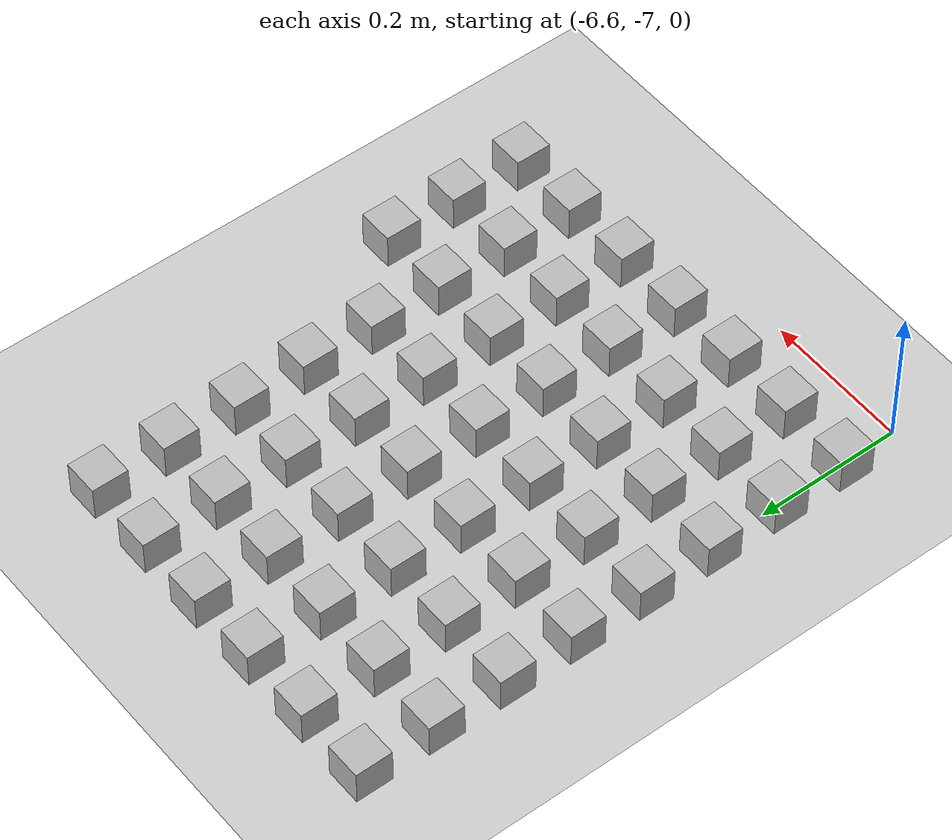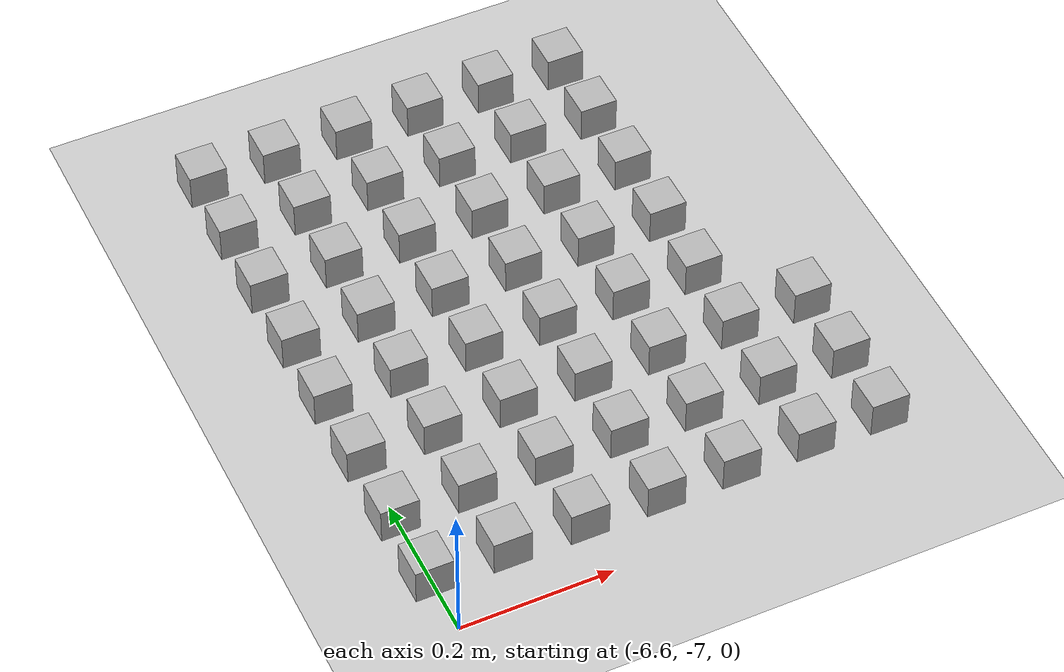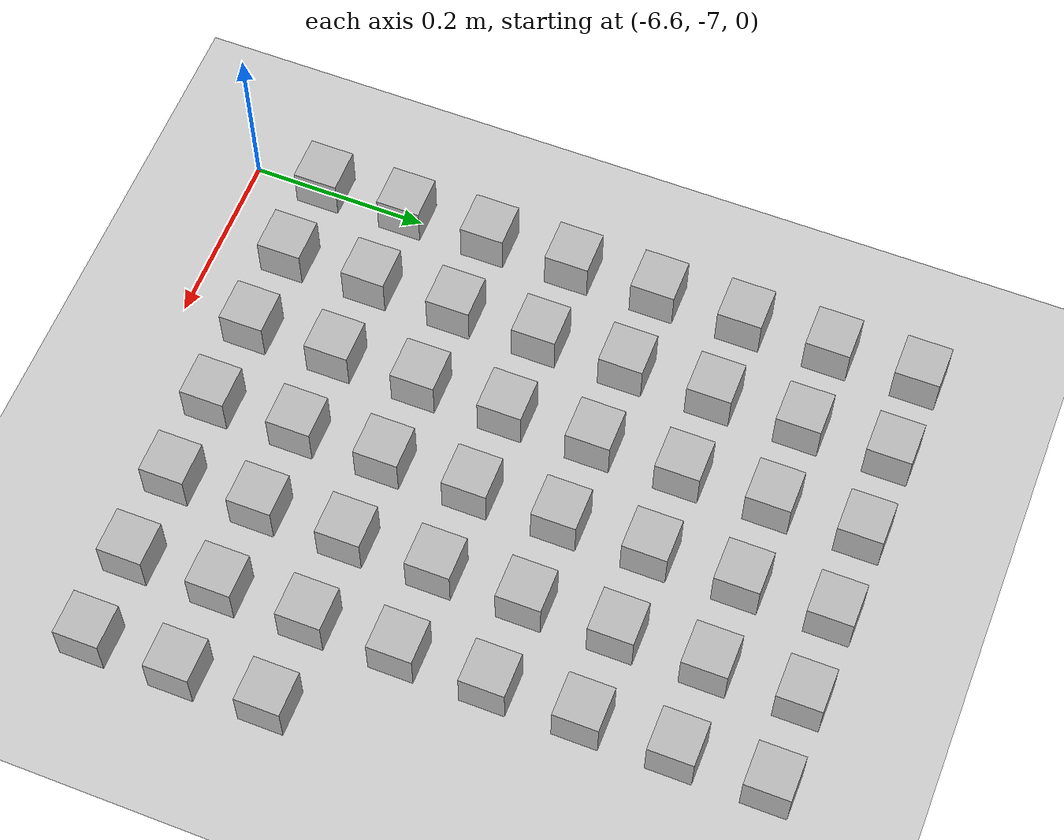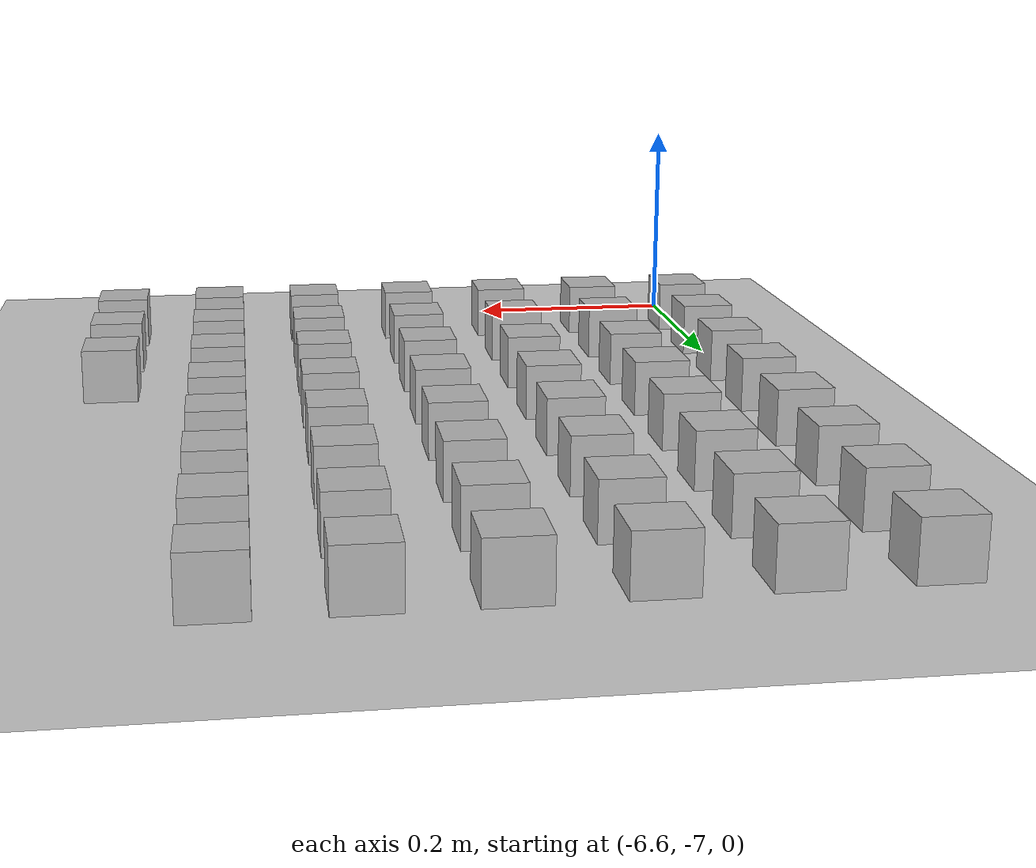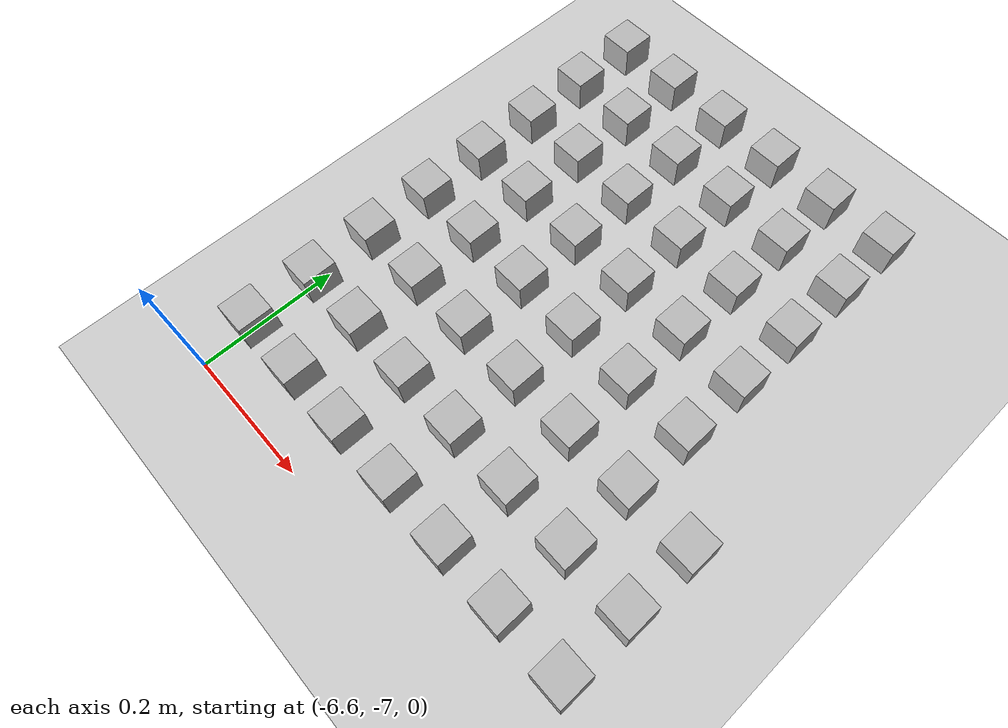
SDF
<sdf version="1.4">
 <world name="default">
  <model name="ground_plane">
   <static>1</static>
   <link name="link">
    <collision name="collision">
     <geometry><plane><normal>0 0 1</normal><size>100 100</size></plane></geometry>
     <surface><friction><ode><mu>100</mu><mu2>50</mu2></ode></friction></surface>
    </collision>
    <visual name="visual">
     <cast_shadows>0</cast_shadows>
     <geometry><plane><normal>0 0 1</normal><size>100 100</size></plane></geometry>
     <material>
      <script><uri>file://media/materials/scripts/gazebo.material</uri><name>Gazebo/Grey</name></script>
     </material>
    </visual>
    <velocity_decay><linear>0</linear><angular>0</angular></velocity_decay>
   </link>
  </model>
  <model name="at64">
   <static>0</static>
   <link name="link">
    <inertial>
     <mass>0.01</mass>
     <inertia><ixx>4e-05</ixx><ixy>0</ixy><ixz>0</ixz><iyy>4e-05</iyy><iyz>0</iyz><izz>4e-05</izz></inertia>
    </inertial>
    <visual name="visual">
     <geometry><box><size>0.05 0.05 0.05</size></box></geometry>
     <material>
      <script>
       <uri>model://at0/materials/scripts</uri>
       <uri>model://at0/materials/textures</uri>
       <name>at0/Diffuse</name>
      </script>
     </material>
    </visual>
    <collision name="collision">
     <geometry><box><size>0.05 0.05 0.05</size></box></geometry>
     <surface><friction><ode><mu>0.8</mu><mu2>0.7</mu2></ode></friction></surface>
    </collision>
    <velocity_decay><linear>0</linear><angular>0</angular></velocity_decay>
   </link>
   <pose>-6.60353 -6.91802 0.025 0 -0 0</pose>
  </model>
  <model name="at65">
   <static>0</static>
   <link name="link">
    <inertial>
     <mass>0.01</mass>
     <inertia><ixx>4e-05</ixx><ixy>0</ixy><ixz>0</ixz><iyy>4e-05</iyy><iyz>0</iyz><izz>4e-05</izz></inertia>
    </inertial>
    <visual name="visual">
     <geometry><box><size>0.05 0.05 0.05</size></box></geometry>
     <material>
      <script>
       <uri>model://at0/materials/scripts</uri>
       <uri>model://at0/materials/textures</uri>
       <name>at0/Diffuse</name>
      </script>
     </material>
    </visual>
    <collision name="collision">
     <geometry><box><size>0.05 0.05 0.05</size></box></geometry>
     <surface><friction><ode><mu>0.8</mu><mu2>0.7</mu2></ode></friction></surface>
    </collision>
    <velocity_decay><linear>0</linear><angular>0</angular></velocity_decay>
   </link>
   <pose>-6.50353 -6.91802 0.025 0 -0 0</pose>
  </model>
  <model name="at66">
   <static>0</static>
   <link name="link">
    <inertial>
     <mass>0.01</mass>
     <inertia><ixx>4e-05</ixx><ixy>0</ixy><ixz>0</ixz><iyy>4e-05</iyy><iyz>0</iyz><izz>4e-05</izz></inertia>
    </inertial>
    <visual name="visual">
     <geometry><box><size>0.05 0.05 0.05</size></box></geometry>
     <material>
      <script>
       <uri>model://at0/materials/scripts</uri>
       <uri>model://at0/materials/textures</uri>
       <name>at0/Diffuse</name>
      </script>
     </material>
    </visual>
    <collision name="collision">
     <geometry><box><size>0.05 0.05 0.05</size></box></geometry>
     <surface><friction><ode><mu>0.8</mu><mu2>0.7</mu2></ode></friction></surface>
    </collision>
    <velocity_decay><linear>0</linear><angular>0</angular></velocity_decay>
   </link>
   <pose>-6.40353 -6.91802 0.025 0 -0 0</pose>
  </model>
  <model name="at67">
   <static>0</static>
   <link name="link">
    <inertial>
     <mass>0.01</mass>
     <inertia><ixx>4e-05</ixx><ixy>0</ixy><ixz>0</ixz><iyy>4e-05</iyy><iyz>0</iyz><izz>4e-05</izz></inertia>
    </inertial>
    <visual name="visual">
     <geometry><box><size>0.05 0.05 0.05</size></box></geometry>
     <material>
      <script>
       <uri>model://at0/materials/scripts</uri>
       <uri>model://at0/materials/textures</uri>
       <name>at0/Diffuse</name>
      </script>
     </material>
    </visual>
    <collision name="collision">
     <geometry><box><size>0.05 0.05 0.05</size></box></geometry>
     <surface><friction><ode><mu>0.8</mu><mu2>0.7</mu2></ode></friction></surface>
    </collision>
    <velocity_decay><linear>0</linear><angular>0</angular></velocity_decay>
   </link>
   <pose>-6.30353 -6.91802 0.025 0 -0 0</pose>
  </model>
  <model name="at68">
   <static>0</static>
   <link name="link">
    <inertial>
     <mass>0.01</mass>
     <inertia><ixx>4e-05</ixx><ixy>0</ixy><ixz>0</ixz><iyy>4e-05</iyy><iyz>0</iyz><izz>4e-05</izz></inertia>
    </inertial>
    <visual name="visual">
     <geometry><box><size>0.05 0.05 0.05</size></box></geometry>
     <material>
      <script>
       <uri>model://at0/materials/scripts</uri>
       <uri>model://at0/materials/textures</uri>
       <name>at0/Diffuse</name>
      </script>
     </material>
    </visual>
    <collision name="collision">
     <geometry><box><size>0.05 0.05 0.05</size></box></geometry>
     <surface><friction><ode><mu>0.8</mu><mu2>0.7</mu2></ode></friction></surface>
    </collision>
    <velocity_decay><linear>0</linear><angular>0</angular></velocity_decay>
   </link>
   <pose>-6.20353 -6.91802 0.025 0 -0 0</pose>
  </model>
  <model name="at69">
   <static>0</static>
   <link name="link">
    <inertial>
     <mass>0.01</mass>
     <inertia><ixx>4e-05</ixx><ixy>0</ixy><ixz>0</ixz><iyy>4e-05</iyy><iyz>0</iyz><izz>4e-05</izz></inertia>
    </inertial>
    <visual name="visual">
     <geometry><box><size>0.05 0.05 0.05</size></box></geometry>
     <material>
      <script>
       <uri>model://at0/materials/scripts</uri>
       <uri>model://at0/materials/textures</uri>
       <name>at0/Diffuse</name>
      </script>
     </material>
    </visual>
    <collision name="collision">
     <geometry><box><size>0.05 0.05 0.05</size></box></geometry>
     <surface><friction><ode><mu>0.8</mu><mu2>0.7</mu2></ode></friction></surface>
    </collision>
    <velocity_decay><linear>0</linear><angular>0</angular></velocity_decay>
   </link>
   <pose>-6.10353 -6.91802 0.025 0 -0 0</pose>
  </model>
  <model name="at70">
   <static>0</static>
   <link name="link">
    <inertial>
     <mass>0.01</mass>
     <inertia><ixx>4e-05</ixx><ixy>0</ixy><ixz>0</ixz><iyy>4e-05</iyy><iyz>0</iyz><izz>4e-05</izz></inertia>
    </inertial>
    <visual name="visual">
     <geometry><box><size>0.05 0.05 0.05</size></box></geometry>
     <material>
      <script>
       <uri>model://at0/materials/scripts</uri>
       <uri>model://at0/materials/textures</uri>
       <name>at0/Diffuse</name>
      </script>
     </material>
    </visual>
    <collision name="collision">
     <geometry><box><size>0.05 0.05 0.05</size></box></geometry>
     <surface><friction><ode><mu>0.8</mu><mu2>0.7</mu2></ode></friction></surface>
    </collision>
    <velocity_decay><linear>0</linear><angular>0</angular></velocity_decay>
   </link>
   <pose>-6.00353 -6.91802 0.025 0 -0 0</pose>
  </model>
  <model name="at72">
   <static>0</static>
   <link name="link">
    <inertial>
     <mass>0.01</mass>
     <inertia><ixx>4e-05</ixx><ixy>0</ixy><ixz>0</ixz><iyy>4e-05</iyy><iyz>0</iyz><izz>4e-05</izz></inertia>
    </inertial>
    <visual name="visual">
     <geometry><box><size>0.05 0.05 0.05</size></box></geometry>
     <material>
      <script>
       <uri>model://at0/materials/scripts</uri>
       <uri>model://at0/materials/textures</uri>
       <name>at0/Diffuse</name>
      </script>
     </material>
    </visual>
    <collision name="collision">
     <geometry><box><size>0.05 0.05 0.05</size></box></geometry>
     <surface><friction><ode><mu>0.8</mu><mu2>0.7</mu2></ode></friction></surface>
    </collision>
    <velocity_decay><linear>0</linear><angular>0</angular></velocity_decay>
   </link>
   <pose>-6.60353 -6.81802 0.025 0 -0 0</pose>
  </model>
  <model name="at73">
   <static>0</static>
   <link name="link">
    <inertial>
     <mass>0.01</mass>
     <inertia><ixx>4e-05</ixx><ixy>0</ixy><ixz>0</ixz><iyy>4e-05</iyy><iyz>0</iyz><izz>4e-05</izz></inertia>
    </inertial>
    <visual name="visual">
     <geometry><box><size>0.05 0.05 0.05</size></box></geometry>
     <material>
      <script>
       <uri>model://at0/materials/scripts</uri>
       <uri>model://at0/materials/textures</uri>
       <name>at0/Diffuse</name>
      </script>
     </material>
    </visual>
    <collision name="collision">
     <geometry><box><size>0.05 0.05 0.05</size></box></geometry>
     <surface><friction><ode><mu>0.8</mu><mu2>0.7</mu2></ode></friction></surface>
    </collision>
    <velocity_decay><linear>0</linear><angular>0</angular></velocity_decay>
   </link>
   <pose>-6.50353 -6.81802 0.025 0 -0 0</pose>
  </model>
  <model name="at74">
   <static>0</static>
   <link name="link">
    <inertial>
     <mass>0.01</mass>
     <inertia><ixx>4e-05</ixx><ixy>0</ixy><ixz>0</ixz><iyy>4e-05</iyy><iyz>0</iyz><izz>4e-05</izz></inertia>
    </inertial>
    <visual name="visual">
     <geometry><box><size>0.05 0.05 0.05</size></box></geometry>
     <material>
      <script>
       <uri>model://at0/materials/scripts</uri>
       <uri>model://at0/materials/textures</uri>
       <name>at0/Diffuse</name>
      </script>
     </material>
    </visual>
    <collision name="collision">
     <geometry><box><size>0.05 0.05 0.05</size></box></geometry>
     <surface><friction><ode><mu>0.8</mu><mu2>0.7</mu2></ode></friction></surface>
    </collision>
    <velocity_decay><linear>0</linear><angular>0</angular></velocity_decay>
   </link>
   <pose>-6.40353 -6.81802 0.025 0 -0 0</pose>
  </model>
  <model name="at75">
   <static>0</static>
   <link name="link">
    <inertial>
     <mass>0.01</mass>
     <inertia><ixx>4e-05</ixx><ixy>0</ixy><ixz>0</ixz><iyy>4e-05</iyy><iyz>0</iyz><izz>4e-05</izz></inertia>
    </inertial>
    <visual name="visual">
     <geometry><box><size>0.05 0.05 0.05</size></box></geometry>
     <material>
      <script>
       <uri>model://at0/materials/scripts</uri>
       <uri>model://at0/materials/textures</uri>
       <name>at0/Diffuse</name>
      </script>
     </material>
    </visual>
    <collision name="collision">
     <geometry><box><size>0.05 0.05 0.05</size></box></geometry>
     <surface><friction><ode><mu>0.8</mu><mu2>0.7</mu2></ode></friction></surface>
    </collision>
    <velocity_decay><linear>0</linear><angular>0</angular></velocity_decay>
   </link>
   <pose>-6.30353 -6.81802 0.025 0 -0 0</pose>
  </model>
  <model name="at76">
   <static>0</static>
   <link name="link">
    <inertial>
     <mass>0.01</mass>
     <inertia><ixx>4e-05</ixx><ixy>0</ixy><ixz>0</ixz><iyy>4e-05</iyy><iyz>0</iyz><izz>4e-05</izz></inertia>
    </inertial>
    <visual name="visual">
     <geometry><box><size>0.05 0.05 0.05</size></box></geometry>
     <material>
      <script>
       <uri>model://at0/materials/scripts</uri>
       <uri>model://at0/materials/textures</uri>
       <name>at0/Diffuse</name>
      </script>
     </material>
    </visual>
    <collision name="collision">
     <geometry><box><size>0.05 0.05 0.05</size></box></geometry>
     <surface><friction><ode><mu>0.8</mu><mu2>0.7</mu2></ode></friction></surface>
    </collision>
    <velocity_decay><linear>0</linear><angular>0</angular></velocity_decay>
   </link>
   <pose>-6.20353 -6.81802 0.025 0 -0 0</pose>
  </model>
  <model name="at77">
   <static>0</static>
   <link name="link">
    <inertial>
     <mass>0.01</mass>
     <inertia><ixx>4e-05</ixx><ixy>0</ixy><ixz>0</ixz><iyy>4e-05</iyy><iyz>0</iyz><izz>4e-05</izz></inertia>
    </inertial>
    <visual name="visual">
     <geometry><box><size>0.05 0.05 0.05</size></box></geometry>
     <material>
      <script>
       <uri>model://at0/materials/scripts</uri>
       <uri>model://at0/materials/textures</uri>
       <name>at0/Diffuse</name>
      </script>
     </material>
    </visual>
    <collision name="collision">
     <geometry><box><size>0.05 0.05 0.05</size></box></geometry>
     <surface><friction><ode><mu>0.8</mu><mu2>0.7</mu2></ode></friction></surface>
    </collision>
    <velocity_decay><linear>0</linear><angular>0</angular></velocity_decay>
   </link>
   <pose>-6.10353 -6.81802 0.025 0 -0 0</pose>
  </model>
  <model name="at78">
   <static>0</static>
   <link name="link">
    <inertial>
     <mass>0.01</mass>
     <inertia><ixx>4e-05</ixx><ixy>0</ixy><ixz>0</ixz><iyy>4e-05</iyy><iyz>0</iyz><izz>4e-05</izz></inertia>
    </inertial>
    <visual name="visual">
     <geometry><box><size>0.05 0.05 0.05</size></box></geometry>
     <material>
      <script>
       <uri>model://at0/materials/scripts</uri>
       <uri>model://at0/materials/textures</uri>
       <name>at0/Diffuse</name>
      </script>
     </material>
    </visual>
    <collision name="collision">
     <geometry><box><size>0.05 0.05 0.05</size></box></geometry>
     <surface><friction><ode><mu>0.8</mu><mu2>0.7</mu2></ode></friction></surface>
    </collision>
    <velocity_decay><linear>0</linear><angular>0</angular></velocity_decay>
   </link>
   <pose>-6.00353 -6.81802 0.025 0 -0 0</pose>
  </model>
  <model name="at80">
   <static>0</static>
   <link name="link">
    <inertial>
     <mass>0.01</mass>
     <inertia><ixx>4e-05</ixx><ixy>0</ixy><ixz>0</ixz><iyy>4e-05</iyy><iyz>0</iyz><izz>4e-05</izz></inertia>
    </inertial>
    <visual name="visual">
     <geometry><box><size>0.05 0.05 0.05</size></box></geometry>
     <material>
      <script>
       <uri>model://at0/materials/scripts</uri>
       <uri>model://at0/materials/textures</uri>
       <name>at0/Diffuse</name>
      </script>
     </material>
    </visual>
    <collision name="collision">
     <geometry><box><size>0.05 0.05 0.05</size></box></geometry>
     <surface><friction><ode><mu>0.8</mu><mu2>0.7</mu2></ode></friction></surface>
    </collision>
    <velocity_decay><linear>0</linear><angular>0</angular></velocity_decay>
   </link>
   <pose>-6.60353 -6.71802 0.025 0 -0 0</pose>
  </model>
  <model name="at81">
   <static>0</static>
   <link name="link">
    <inertial>
     <mass>0.01</mass>
     <inertia><ixx>4e-05</ixx><ixy>0</ixy><ixz>0</ixz><iyy>4e-05</iyy><iyz>0</iyz><izz>4e-05</izz></inertia>
    </inertial>
    <visual name="visual">
     <geometry><box><size>0.05 0.05 0.05</size></box></geometry>
     <material>
      <script>
       <uri>model://at0/materials/scripts</uri>
       <uri>model://at0/materials/textures</uri>
       <name>at0/Diffuse</name>
      </script>
     </material>
    </visual>
    <collision name="collision">
     <geometry><box><size>0.05 0.05 0.05</size></box></geometry>
     <surface><friction><ode><mu>0.8</mu><mu2>0.7</mu2></ode></friction></surface>
    </collision>
    <velocity_decay><linear>0</linear><angular>0</angular></velocity_decay>
   </link>
   <pose>-6.50353 -6.71802 0.025 0 -0 0</pose>
  </model>
  <model name="at82">
   <static>0</static>
   <link name="link">
    <inertial>
     <mass>0.01</mass>
     <inertia><ixx>4e-05</ixx><ixy>0</ixy><ixz>0</ixz><iyy>4e-05</iyy><iyz>0</iyz><izz>4e-05</izz></inertia>
    </inertial>
    <visual name="visual">
     <geometry><box><size>0.05 0.05 0.05</size></box></geometry>
     <material>
      <script>
       <uri>model://at0/materials/scripts</uri>
       <uri>model://at0/materials/textures</uri>
       <name>at0/Diffuse</name>
      </script>
     </material>
    </visual>
    <collision name="collision">
     <geometry><box><size>0.05 0.05 0.05</size></box></geometry>
     <surface><friction><ode><mu>0.8</mu><mu2>0.7</mu2></ode></friction></surface>
    </collision>
    <velocity_decay><linear>0</linear><angular>0</angular></velocity_decay>
   </link>
   <pose>-6.40353 -6.71802 0.025 0 -0 0</pose>
  </model>
  <model name="at83">
   <static>0</static>
   <link name="link">
    <inertial>
     <mass>0.01</mass>
     <inertia><ixx>4e-05</ixx><ixy>0</ixy><ixz>0</ixz><iyy>4e-05</iyy><iyz>0</iyz><izz>4e-05</izz></inertia>
    </inertial>
    <visual name="visual">
     <geometry><box><size>0.05 0.05 0.05</size></box></geometry>
     <material>
      <script>
       <uri>model://at0/materials/scripts</uri>
       <uri>model://at0/materials/textures</uri>
       <name>at0/Diffuse</name>
      </script>
     </material>
    </visual>
    <collision name="collision">
     <geometry><box><size>0.05 0.05 0.05</size></box></geometry>
     <surface><friction><ode><mu>0.8</mu><mu2>0.7</mu2></ode></friction></surface>
    </collision>
    <velocity_decay><linear>0</linear><angular>0</angular></velocity_decay>
   </link>
   <pose>-6.30353 -6.71802 0.025 0 -0 0</pose>
  </model>
  <model name="at84">
   <static>0</static>
   <link name="link">
    <inertial>
     <mass>0.01</mass>
     <inertia><ixx>4e-05</ixx><ixy>0</ixy><ixz>0</ixz><iyy>4e-05</iyy><iyz>0</iyz><izz>4e-05</izz></inertia>
    </inertial>
    <visual name="visual">
     <geometry><box><size>0.05 0.05 0.05</size></box></geometry>
     <material>
      <script>
       <uri>model://at0/materials/scripts</uri>
       <uri>model://at0/materials/textures</uri>
       <name>at0/Diffuse</name>
      </script>
     </material>
    </visual>
    <collision name="collision">
     <geometry><box><size>0.05 0.05 0.05</size></box></geometry>
     <surface><friction><ode><mu>0.8</mu><mu2>0.7</mu2></ode></friction></surface>
    </collision>
    <velocity_decay><linear>0</linear><angular>0</angular></velocity_decay>
   </link>
   <pose>-6.20353 -6.71802 0.025 0 -0 0</pose>
  </model>
  <model name="at85">
   <static>0</static>
   <link name="link">
    <inertial>
     <mass>0.01</mass>
     <inertia><ixx>4e-05</ixx><ixy>0</ixy><ixz>0</ixz><iyy>4e-05</iyy><iyz>0</iyz><izz>4e-05</izz></inertia>
    </inertial>
    <visual name="visual">
     <geometry><box><size>0.05 0.05 0.05</size></box></geometry>
     <material>
      <script>
       <uri>model://at0/materials/scripts</uri>
       <uri>model://at0/materials/textures</uri>
       <name>at0/Diffuse</name>
      </script>
     </material>
    </visual>
    <collision name="collision">
     <geometry><box><size>0.05 0.05 0.05</size></box></geometry>
     <surface><friction><ode><mu>0.8</mu><mu2>0.7</mu2></ode></friction></surface>
    </collision>
    <velocity_decay><linear>0</linear><angular>0</angular></velocity_decay>
   </link>
   <pose>-6.10353 -6.71802 0.025 0 -0 0</pose>
  </model>
  <model name="at86">
   <static>0</static>
   <link name="link">
    <inertial>
     <mass>0.01</mass>
     <inertia><ixx>4e-05</ixx><ixy>0</ixy><ixz>0</ixz><iyy>4e-05</iyy><iyz>0</iyz><izz>4e-05</izz></inertia>
    </inertial>
    <visual name="visual">
     <geometry><box><size>0.05 0.05 0.05</size></box></geometry>
     <material>
      <script>
       <uri>model://at0/materials/scripts</uri>
       <uri>model://at0/materials/textures</uri>
       <name>at0/Diffuse</name>
      </script>
     </material>
    </visual>
    <collision name="collision">
     <geometry><box><size>0.05 0.05 0.05</size></box></geometry>
     <surface><friction><ode><mu>0.8</mu><mu2>0.7</mu2></ode></friction></surface>
    </collision>
    <velocity_decay><linear>0</linear><angular>0</angular></velocity_decay>
   </link>
   <pose>-6.00353 -6.71802 0.025 0 -0 0</pose>
  </model>
  <model name="at88">
   <static>0</static>
   <link name="link">
    <inertial>
     <mass>0.01</mass>
     <inertia><ixx>4e-05</ixx><ixy>0</ixy><ixz>0</ixz><iyy>4e-05</iyy><iyz>0</iyz><izz>4e-05</izz></inertia>
    </inertial>
    <visual name="visual">
     <geometry><box><size>0.05 0.05 0.05</size></box></geometry>
     <material>
      <script>
       <uri>model://at0/materials/scripts</uri>
       <uri>model://at0/materials/textures</uri>
       <name>at0/Diffuse</name>
      </script>
     </material>
    </visual>
    <collision name="collision">
     <geometry><box><size>0.05 0.05 0.05</size></box></geometry>
     <surface><friction><ode><mu>0.8</mu><mu2>0.7</mu2></ode></friction></surface>
    </collision>
    <velocity_decay><linear>0</linear><angular>0</angular></velocity_decay>
   </link>
   <pose>-6.60353 -6.61802 0.025 0 -0 0</pose>
  </model>
  <model name="at89">
   <static>0</static>
   <link name="link">
    <inertial>
     <mass>0.01</mass>
     <inertia><ixx>4e-05</ixx><ixy>0</ixy><ixz>0</ixz><iyy>4e-05</iyy><iyz>0</iyz><izz>4e-05</izz></inertia>
    </inertial>
    <visual name="visual">
     <geometry><box><size>0.05 0.05 0.05</size></box></geometry>
     <material>
      <script>
       <uri>model://at0/materials/scripts</uri>
       <uri>model://at0/materials/textures</uri>
       <name>at0/Diffuse</name>
      </script>
     </material>
    </visual>
    <collision name="collision">
     <geometry><box><size>0.05 0.05 0.05</size></box></geometry>
     <surface><friction><ode><mu>0.8</mu><mu2>0.7</mu2></ode></friction></surface>
    </collision>
    <velocity_decay><linear>0</linear><angular>0</angular></velocity_decay>
   </link>
   <pose>-6.50353 -6.61802 0.025 0 -0 0</pose>
  </model>
  <model name="at90">
   <static>0</static>
   <link name="link">
    <inertial>
     <mass>0.01</mass>
     <inertia><ixx>4e-05</ixx><ixy>0</ixy><ixz>0</ixz><iyy>4e-05</iyy><iyz>0</iyz><izz>4e-05</izz></inertia>
    </inertial>
    <visual name="visual">
     <geometry><box><size>0.05 0.05 0.05</size></box></geometry>
     <material>
      <script>
       <uri>model://at0/materials/scripts</uri>
       <uri>model://at0/materials/textures</uri>
       <name>at0/Diffuse</name>
      </script>
     </material>
    </visual>
    <collision name="collision">
     <geometry><box><size>0.05 0.05 0.05</size></box></geometry>
     <surface><friction><ode><mu>0.8</mu><mu2>0.7</mu2></ode></friction></surface>
    </collision>
    <velocity_decay><linear>0</linear><angular>0</angular></velocity_decay>
   </link>
   <pose>-6.40353 -6.61802 0.025 0 -0 0</pose>
  </model>
  <model name="at91">
   <static>0</static>
   <link name="link">
    <inertial>
     <mass>0.01</mass>
     <inertia><ixx>4e-05</ixx><ixy>0</ixy><ixz>0</ixz><iyy>4e-05</iyy><iyz>0</iyz><izz>4e-05</izz></inertia>
    </inertial>
    <visual name="visual">
     <geometry><box><size>0.05 0.05 0.05</size></box></geometry>
     <material>
      <script>
       <uri>model://at0/materials/scripts</uri>
       <uri>model://at0/materials/textures</uri>
       <name>at0/Diffuse</name>
      </script>
     </material>
    </visual>
    <collision name="collision">
     <geometry><box><size>0.05 0.05 0.05</size></box></geometry>
     <surface><friction><ode><mu>0.8</mu><mu2>0.7</mu2></ode></friction></surface>
    </collision>
    <velocity_decay><linear>0</linear><angular>0</angular></velocity_decay>
   </link>
   <pose>-6.30353 -6.61802 0.025 0 -0 0</pose>
  </model>
  <model name="at92">
   <static>0</static>
   <link name="link">
    <inertial>
     <mass>0.01</mass>
     <inertia><ixx>4e-05</ixx><ixy>0</ixy><ixz>0</ixz><iyy>4e-05</iyy><iyz>0</iyz><izz>4e-05</izz></inertia>
    </inertial>
    <visual name="visual">
     <geometry><box><size>0.05 0.05 0.05</size></box></geometry>
     <material>
      <script>
       <uri>model://at0/materials/scripts</uri>
       <uri>model://at0/materials/textures</uri>
       <name>at0/Diffuse</name>
      </script>
     </material>
    </visual>
    <collision name="collision">
     <geometry><box><size>0.05 0.05 0.05</size></box></geometry>
     <surface><friction><ode><mu>0.8</mu><mu2>0.7</mu2></ode></friction></surface>
    </collision>
    <velocity_decay><linear>0</linear><angular>0</angular></velocity_decay>
   </link>
   <pose>-6.20353 -6.61802 0.025 0 -0 0</pose>
  </model>
  <model name="at93">
   <static>0</static>
   <link name="link">
    <inertial>
     <mass>0.01</mass>
     <inertia><ixx>4e-05</ixx><ixy>0</ixy><ixz>0</ixz><iyy>4e-05</iyy><iyz>0</iyz><izz>4e-05</izz></inertia>
    </inertial>
    <visual name="visual">
     <geometry><box><size>0.05 0.05 0.05</size></box></geometry>
     <material>
      <script>
       <uri>model://at0/materials/scripts</uri>
       <uri>model://at0/materials/textures</uri>
       <name>at0/Diffuse</name>
      </script>
     </material>
    </visual>
    <collision name="collision">
     <geometry><box><size>0.05 0.05 0.05</size></box></geometry>
     <surface><friction><ode><mu>0.8</mu><mu2>0.7</mu2></ode></friction></surface>
    </collision>
    <velocity_decay><linear>0</linear><angular>0</angular></velocity_decay>
   </link>
   <pose>-6.10353 -6.61802 0.025 0 -0 0</pose>
  </model>
  <model name="at96">
   <static>0</static>
   <link name="link">
    <inertial>
     <mass>0.01</mass>
     <inertia><ixx>4e-05</ixx><ixy>0</ixy><ixz>0</ixz><iyy>4e-05</iyy><iyz>0</iyz><izz>4e-05</izz></inertia>
    </inertial>
    <visual name="visual">
     <geometry><box><size>0.05 0.05 0.05</size></box></geometry>
     <material>
      <script>
       <uri>model://at0/materials/scripts</uri>
       <uri>model://at0/materials/textures</uri>
       <name>at0/Diffuse</name>
      </script>
     </material>
    </visual>
    <collision name="collision">
     <geometry><box><size>0.05 0.05 0.05</size></box></geometry>
     <surface><friction><ode><mu>0.8</mu><mu2>0.7</mu2></ode></friction></surface>
    </collision>
    <velocity_decay><linear>0</linear><angular>0</angular></velocity_decay>
   </link>
   <pose>-6.60353 -6.51802 0.025 0 -0 0</pose>
  </model>
  <model name="at97">
   <static>0</static>
   <link name="link">
    <inertial>
     <mass>0.01</mass>
     <inertia><ixx>4e-05</ixx><ixy>0</ixy><ixz>0</ixz><iyy>4e-05</iyy><iyz>0</iyz><izz>4e-05</izz></inertia>
    </inertial>
    <visual name="visual">
     <geometry><box><size>0.05 0.05 0.05</size></box></geometry>
     <material>
      <script>
       <uri>model://at0/materials/scripts</uri>
       <uri>model://at0/materials/textures</uri>
       <name>at0/Diffuse</name>
      </script>
     </material>
    </visual>
    <collision name="collision">
     <geometry><box><size>0.05 0.05 0.05</size></box></geometry>
     <surface><friction><ode><mu>0.8</mu><mu2>0.7</mu2></ode></friction></surface>
    </collision>
    <velocity_decay><linear>0</linear><angular>0</angular></velocity_decay>
   </link>
   <pose>-6.50353 -6.51802 0.025 0 -0 0</pose>
  </model>
  <model name="at98">
   <static>0</static>
   <link name="link">
    <inertial>
     <mass>0.01</mass>
     <inertia><ixx>4e-05</ixx><ixy>0</ixy><ixz>0</ixz><iyy>4e-05</iyy><iyz>0</iyz><izz>4e-05</izz></inertia>
    </inertial>
    <visual name="visual">
     <geometry><box><size>0.05 0.05 0.05</size></box></geometry>
     <material>
      <script>
       <uri>model://at0/materials/scripts</uri>
       <uri>model://at0/materials/textures</uri>
       <name>at0/Diffuse</name>
      </script>
     </material>
    </visual>
    <collision name="collision">
     <geometry><box><size>0.05 0.05 0.05</size></box></geometry>
     <surface><friction><ode><mu>0.8</mu><mu2>0.7</mu2></ode></friction></surface>
    </collision>
    <velocity_decay><linear>0</linear><angular>0</angular></velocity_decay>
   </link>
   <pose>-6.40353 -6.51802 0.025 0 -0 0</pose>
  </model>
  <model name="at99">
   <static>0</static>
   <link name="link">
    <inertial>
     <mass>0.01</mass>
     <inertia><ixx>4e-05</ixx><ixy>0</ixy><ixz>0</ixz><iyy>4e-05</iyy><iyz>0</iyz><izz>4e-05</izz></inertia>
    </inertial>
    <visual name="visual">
     <geometry><box><size>0.05 0.05 0.05</size></box></geometry>
     <material>
      <script>
       <uri>model://at0/materials/scripts</uri>
       <uri>model://at0/materials/textures</uri>
       <name>at0/Diffuse</name>
      </script>
     </material>
    </visual>
    <collision name="collision">
     <geometry><box><size>0.05 0.05 0.05</size></box></geometry>
     <surface><friction><ode><mu>0.8</mu><mu2>0.7</mu2></ode></friction></surface>
    </collision>
    <velocity_decay><linear>0</linear><angular>0</angular></velocity_decay>
   </link>
   <pose>-6.30353 -6.51802 0.025 0 -0 0</pose>
  </model>
  <model name="at100">
   <static>0</static>
   <link name="link">
    <inertial>
     <mass>0.01</mass>
     <inertia><ixx>4e-05</ixx><ixy>0</ixy><ixz>0</ixz><iyy>4e-05</iyy><iyz>0</iyz><izz>4e-05</izz></inertia>
    </inertial>
    <visual name="visual">
     <geometry><box><size>0.05 0.05 0.05</size></box></geometry>
     <material>
      <script>
       <uri>model://at0/materials/scripts</uri>
       <uri>model://at0/materials/textures</uri>
       <name>at0/Diffuse</name>
      </script>
     </material>
    </visual>
    <collision name="collision">
     <geometry><box><size>0.05 0.05 0.05</size></box></geometry>
     <surface><friction><ode><mu>0.8</mu><mu2>0.7</mu2></ode></friction></surface>
    </collision>
    <velocity_decay><linear>0</linear><angular>0</angular></velocity_decay>
   </link>
   <pose>-6.20353 -6.51802 0.025 0 -0 0</pose>
  </model>
  <model name="at101">
   <static>0</static>
   <link name="link">
    <inertial>
     <mass>0.01</mass>
     <inertia><ixx>4e-05</ixx><ixy>0</ixy><ixz>0</ixz><iyy>4e-05</iyy><iyz>0</iyz><izz>4e-05</izz></inertia>
    </inertial>
    <visual name="visual">
     <geometry><box><size>0.05 0.05 0.05</size></box></geometry>
     <material>
      <script>
       <uri>model://at0/materials/scripts</uri>
       <uri>model://at0/materials/textures</uri>
       <name>at0/Diffuse</name>
      </script>
     </material>
    </visual>
    <collision name="collision">
     <geometry><box><size>0.05 0.05 0.05</size></box></geometry>
     <surface><friction><ode><mu>0.8</mu><mu2>0.7</mu2></ode></friction></surface>
    </collision>
    <velocity_decay><linear>0</linear><angular>0</angular></velocity_decay>
   </link>
   <pose>-6.10353 -6.51802 0.025 0 -0 0</pose>
  </model>
  <model name="at104">
   <static>0</static>
   <link name="link">
    <inertial>
     <mass>0.01</mass>
     <inertia><ixx>4e-05</ixx><ixy>0</ixy><ixz>0</ixz><iyy>4e-05</iyy><iyz>0</iyz><izz>4e-05</izz></inertia>
    </inertial>
    <visual name="visual">
     <geometry><box><size>0.05 0.05 0.05</size></box></geometry>
     <material>
      <script>
       <uri>model://at0/materials/scripts</uri>
       <uri>model://at0/materials/textures</uri>
       <name>at0/Diffuse</name>
      </script>
     </material>
    </visual>
    <collision name="collision">
     <geometry><box><size>0.05 0.05 0.05</size></box></geometry>
     <surface><friction><ode><mu>0.8</mu><mu2>0.7</mu2></ode></friction></surface>
    </collision>
    <velocity_decay><linear>0</linear><angular>0</angular></velocity_decay>
   </link>
   <pose>-6.60353 -6.41802 0.025 0 -0 0</pose>
  </model>
  <model name="at105">
   <static>0</static>
   <link name="link">
    <inertial>
     <mass>0.01</mass>
     <inertia><ixx>4e-05</ixx><ixy>0</ixy><ixz>0</ixz><iyy>4e-05</iyy><iyz>0</iyz><izz>4e-05</izz></inertia>
    </inertial>
    <visual name="visual">
     <geometry><box><size>0.05 0.05 0.05</size></box></geometry>
     <material>
      <script>
       <uri>model://at0/materials/scripts</uri>
       <uri>model://at0/materials/textures</uri>
       <name>at0/Diffuse</name>
      </script>
     </material>
    </visual>
    <collision name="collision">
     <geometry><box><size>0.05 0.05 0.05</size></box></geometry>
     <surface><friction><ode><mu>0.8</mu><mu2>0.7</mu2></ode></friction></surface>
    </collision>
    <velocity_decay><linear>0</linear><angular>0</angular></velocity_decay>
   </link>
   <pose>-6.50353 -6.41802 0.025 0 -0 0</pose>
  </model>
  <model name="at106">
   <static>0</static>
   <link name="link">
    <inertial>
     <mass>0.01</mass>
     <inertia><ixx>4e-05</ixx><ixy>0</ixy><ixz>0</ixz><iyy>4e-05</iyy><iyz>0</iyz><izz>4e-05</izz></inertia>
    </inertial>
    <visual name="visual">
     <geometry><box><size>0.05 0.05 0.05</size></box></geometry>
     <material>
      <script>
       <uri>model://at0/materials/scripts</uri>
       <uri>model://at0/materials/textures</uri>
       <name>at0/Diffuse</name>
      </script>
     </material>
    </visual>
    <collision name="collision">
     <geometry><box><size>0.05 0.05 0.05</size></box></geometry>
     <surface><friction><ode><mu>0.8</mu><mu2>0.7</mu2></ode></friction></surface>
    </collision>
    <velocity_decay><linear>0</linear><angular>0</angular></velocity_decay>
   </link>
   <pose>-6.40353 -6.41802 0.025 0 -0 0</pose>
  </model>
  <model name="at107">
   <static>0</static>
   <link name="link">
    <inertial>
     <mass>0.01</mass>
     <inertia><ixx>4e-05</ixx><ixy>0</ixy><ixz>0</ixz><iyy>4e-05</iyy><iyz>0</iyz><izz>4e-05</izz></inertia>
    </inertial>
    <visual name="visual">
     <geometry><box><size>0.05 0.05 0.05</size></box></geometry>
     <material>
      <script>
       <uri>model://at0/materials/scripts</uri>
       <uri>model://at0/materials/textures</uri>
       <name>at0/Diffuse</name>
      </script>
     </material>
    </visual>
    <collision name="collision">
     <geometry><box><size>0.05 0.05 0.05</size></box></geometry>
     <surface><friction><ode><mu>0.8</mu><mu2>0.7</mu2></ode></friction></surface>
    </collision>
    <velocity_decay><linear>0</linear><angular>0</angular></velocity_decay>
   </link>
   <pose>-6.30353 -6.41802 0.025 0 -0 0</pose>
  </model>
  <model name="at108">
   <static>0</static>
   <link name="link">
    <inertial>
     <mass>0.01</mass>
     <inertia><ixx>4e-05</ixx><ixy>0</ixy><ixz>0</ixz><iyy>4e-05</iyy><iyz>0</iyz><izz>4e-05</izz></inertia>
    </inertial>
    <visual name="visual">
     <geometry><box><size>0.05 0.05 0.05</size></box></geometry>
     <material>
      <script>
       <uri>model://at0/materials/scripts</uri>
       <uri>model://at0/materials/textures</uri>
       <name>at0/Diffuse</name>
      </script>
     </material>
    </visual>
    <collision name="collision">
     <geometry><box><size>0.05 0.05 0.05</size></box></geometry>
     <surface><friction><ode><mu>0.8</mu><mu2>0.7</mu2></ode></friction></surface>
    </collision>
    <velocity_decay><linear>0</linear><angular>0</angular></velocity_decay>
   </link>
   <pose>-6.20353 -6.41802 0.025 0 -0 0</pose>
  </model>
  <model name="at109">
   <static>0</static>
   <link name="link">
    <inertial>
     <mass>0.01</mass>
     <inertia><ixx>4e-05</ixx><ixy>0</ixy><ixz>0</ixz><iyy>4e-05</iyy><iyz>0</iyz><izz>4e-05</izz></inertia>
    </inertial>
    <visual name="visual">
     <geometry><box><size>0.05 0.05 0.05</size></box></geometry>
     <material>
      <script>
       <uri>model://at0/materials/scripts</uri>
       <uri>model://at0/materials/textures</uri>
       <name>at0/Diffuse</name>
      </script>
     </material>
    </visual>
    <collision name="collision">
     <geometry><box><size>0.05 0.05 0.05</size></box></geometry>
     <surface><friction><ode><mu>0.8</mu><mu2>0.7</mu2></ode></friction></surface>
    </collision>
    <velocity_decay><linear>0</linear><angular>0</angular></velocity_decay>
   </link>
   <pose>-6.10353 -6.41802 0.025 0 -0 0</pose>
  </model>
  <model name="at112">
   <static>0</static>
   <link name="link">
    <inertial>
     <mass>0.01</mass>
     <inertia><ixx>4e-05</ixx><ixy>0</ixy><ixz>0</ixz><iyy>4e-05</iyy><iyz>0</iyz><izz>4e-05</izz></inertia>
    </inertial>
    <visual name="visual">
     <geometry><box><size>0.05 0.05 0.05</size></box></geometry>
     <material>
      <script>
       <uri>model://at0/materials/scripts</uri>
       <uri>model://at0/materials/textures</uri>
       <name>at0/Diffuse</name>
      </script>
     </material>
    </visual>
    <collision name="collision">
     <geometry><box><size>0.05 0.05 0.05</size></box></geometry>
     <surface><friction><ode><mu>0.8</mu><mu2>0.7</mu2></ode></friction></surface>
    </collision>
    <velocity_decay><linear>0</linear><angular>0</angular></velocity_decay>
   </link>
   <pose>-6.60353 -6.31802 0.025 0 -0 0</pose>
  </model>
  <model name="at113">
   <static>0</static>
   <link name="link">
    <inertial>
     <mass>0.01</mass>
     <inertia><ixx>4e-05</ixx><ixy>0</ixy><ixz>0</ixz><iyy>4e-05</iyy><iyz>0</iyz><izz>4e-05</izz></inertia>
    </inertial>
    <visual name="visual">
     <geometry><box><size>0.05 0.05 0.05</size></box></geometry>
     <material>
      <script>
       <uri>model://at0/materials/scripts</uri>
       <uri>model://at0/materials/textures</uri>
       <name>at0/Diffuse</name>
      </script>
     </material>
    </visual>
    <collision name="collision">
     <geometry><box><size>0.05 0.05 0.05</size></box></geometry>
     <surface><friction><ode><mu>0.8</mu><mu2>0.7</mu2></ode></friction></surface>
    </collision>
    <velocity_decay><linear>0</linear><angular>0</angular></velocity_decay>
   </link>
   <pose>-6.50353 -6.31802 0.025 0 -0 0</pose>
  </model>
  <model name="at114">
   <static>0</static>
   <link name="link">
    <inertial>
     <mass>0.01</mass>
     <inertia><ixx>4e-05</ixx><ixy>0</ixy><ixz>0</ixz><iyy>4e-05</iyy><iyz>0</iyz><izz>4e-05</izz></inertia>
    </inertial>
    <visual name="visual">
     <geometry><box><size>0.05 0.05 0.05</size></box></geometry>
     <material>
      <script>
       <uri>model://at0/materials/scripts</uri>
       <uri>model://at0/materials/textures</uri>
       <name>at0/Diffuse</name>
      </script>
     </material>
    </visual>
    <collision name="collision">
     <geometry><box><size>0.05 0.05 0.05</size></box></geometry>
     <surface><friction><ode><mu>0.8</mu><mu2>0.7</mu2></ode></friction></surface>
    </collision>
    <velocity_decay><linear>0</linear><angular>0</angular></velocity_decay>
   </link>
   <pose>-6.40353 -6.31802 0.025 0 -0 0</pose>
  </model>
  <model name="at115">
   <static>0</static>
   <link name="link">
    <inertial>
     <mass>0.01</mass>
     <inertia><ixx>4e-05</ixx><ixy>0</ixy><ixz>0</ixz><iyy>4e-05</iyy><iyz>0</iyz><izz>4e-05</izz></inertia>
    </inertial>
    <visual name="visual">
     <geometry><box><size>0.05 0.05 0.05</size></box></geometry>
     <material>
      <script>
       <uri>model://at0/materials/scripts</uri>
       <uri>model://at0/materials/textures</uri>
       <name>at0/Diffuse</name>
      </script>
     </material>
    </visual>
    <collision name="collision">
     <geometry><box><size>0.05 0.05 0.05</size></box></geometry>
     <surface><friction><ode><mu>0.8</mu><mu2>0.7</mu2></ode></friction></surface>
    </collision>
    <velocity_decay><linear>0</linear><angular>0</angular></velocity_decay>
   </link>
   <pose>-6.30353 -6.31802 0.025 0 -0 0</pose>
  </model>
  <model name="at116">
   <static>0</static>
   <link name="link">
    <inertial>
     <mass>0.01</mass>
     <inertia><ixx>4e-05</ixx><ixy>0</ixy><ixz>0</ixz><iyy>4e-05</iyy><iyz>0</iyz><izz>4e-05</izz></inertia>
    </inertial>
    <visual name="visual">
     <geometry><box><size>0.05 0.05 0.05</size></box></geometry>
     <material>
      <script>
       <uri>model://at0/materials/scripts</uri>
       <uri>model://at0/materials/textures</uri>
       <name>at0/Diffuse</name>
      </script>
     </material>
    </visual>
    <collision name="collision">
     <geometry><box><size>0.05 0.05 0.05</size></box></geometry>
     <surface><friction><ode><mu>0.8</mu><mu2>0.7</mu2></ode></friction></surface>
    </collision>
    <velocity_decay><linear>0</linear><angular>0</angular></velocity_decay>
   </link>
   <pose>-6.20353 -6.31802 0.025 0 -0 0</pose>
  </model>
  <model name="at117">
   <static>0</static>
   <link name="link">
    <inertial>
     <mass>0.01</mass>
     <inertia><ixx>4e-05</ixx><ixy>0</ixy><ixz>0</ixz><iyy>4e-05</iyy><iyz>0</iyz><izz>4e-05</izz></inertia>
    </inertial>
    <visual name="visual">
     <geometry><box><size>0.05 0.05 0.05</size></box></geometry>
     <material>
      <script>
       <uri>model://at0/materials/scripts</uri>
       <uri>model://at0/materials/textures</uri>
       <name>at0/Diffuse</name>
      </script>
     </material>
    </visual>
    <collision name="collision">
     <geometry><box><size>0.05 0.05 0.05</size></box></geometry>
     <surface><friction><ode><mu>0.8</mu><mu2>0.7</mu2></ode></friction></surface>
    </collision>
    <velocity_decay><linear>0</linear><angular>0</angular></velocity_decay>
   </link>
   <pose>-6.10353 -6.31802 0.025 0 -0 0</pose>
  </model>
  <model name="at120">
   <static>0</static>
   <link name="link">
    <inertial>
     <mass>0.01</mass>
     <inertia><ixx>4e-05</ixx><ixy>0</ixy><ixz>0</ixz><iyy>4e-05</iyy><iyz>0</iyz><izz>4e-05</izz></inertia>
    </inertial>
    <visual name="visual">
     <geometry><box><size>0.05 0.05 0.05</size></box></geometry>
     <material>
      <script>
       <uri>model://at0/materials/scripts</uri>
       <uri>model://at0/materials/textures</uri>
       <name>at0/Diffuse</name>
      </script>
     </material>
    </visual>
    <collision name="collision">
     <geometry><box><size>0.05 0.05 0.05</size></box></geometry>
     <surface><friction><ode><mu>0.8</mu><mu2>0.7</mu2></ode></friction></surface>
    </collision>
    <velocity_decay><linear>0</linear><angular>0</angular></velocity_decay>
   </link>
   <pose>-6.60353 -6.21802 0.025 0 -0 0</pose>
  </model>
  <model name="at121">
   <static>0</static>
   <link name="link">
    <inertial>
     <mass>0.01</mass>
     <inertia><ixx>4e-05</ixx><ixy>0</ixy><ixz>0</ixz><iyy>4e-05</iyy><iyz>0</iyz><izz>4e-05</izz></inertia>
    </inertial>
    <visual name="visual">
     <geometry><box><size>0.05 0.05 0.05</size></box></geometry>
     <material>
      <script>
       <uri>model://at0/materials/scripts</uri>
       <uri>model://at0/materials/textures</uri>
       <name>at0/Diffuse</name>
      </script>
     </material>
    </visual>
    <collision name="collision">
     <geometry><box><size>0.05 0.05 0.05</size></box></geometry>
     <surface><friction><ode><mu>0.8</mu><mu2>0.7</mu2></ode></friction></surface>
    </collision>
    <velocity_decay><linear>0</linear><angular>0</angular></velocity_decay>
   </link>
   <pose>-6.50353 -6.21802 0.025 0 -0 0</pose>
  </model>
  <model name="at122">
   <static>0</static>
   <link name="link">
    <inertial>
     <mass>0.01</mass>
     <inertia><ixx>4e-05</ixx><ixy>0</ixy><ixz>0</ixz><iyy>4e-05</iyy><iyz>0</iyz><izz>4e-05</izz></inertia>
    </inertial>
    <visual name="visual">
     <geometry><box><size>0.05 0.05 0.05</size></box></geometry>
     <material>
      <script>
       <uri>model://at0/materials/scripts</uri>
       <uri>model://at0/materials/textures</uri>
       <name>at0/Diffuse</name>
      </script>
     </material>
    </visual>
    <collision name="collision">
     <geometry><box><size>0.05 0.05 0.05</size></box></geometry>
     <surface><friction><ode><mu>0.8</mu><mu2>0.7</mu2></ode></friction></surface>
    </collision>
    <velocity_decay><linear>0</linear><angular>0</angular></velocity_decay>
   </link>
   <pose>-6.40353 -6.21802 0.025 0 -0 0</pose>
  </model>
  <model name="at123">
   <static>0</static>
   <link name="link">
    <inertial>
     <mass>0.01</mass>
     <inertia><ixx>4e-05</ixx><ixy>0</ixy><ixz>0</ixz><iyy>4e-05</iyy><iyz>0</iyz><izz>4e-05</izz></inertia>
    </inertial>
    <visual name="visual">
     <geometry><box><size>0.05 0.05 0.05</size></box></geometry>
     <material>
      <script>
       <uri>model://at0/materials/scripts</uri>
       <uri>model://at0/materials/textures</uri>
       <name>at0/Diffuse</name>
      </script>
     </material>
    </visual>
    <collision name="collision">
     <geometry><box><size>0.05 0.05 0.05</size></box></geometry>
     <surface><friction><ode><mu>0.8</mu><mu2>0.7</mu2></ode></friction></surface>
    </collision>
    <velocity_decay><linear>0</linear><angular>0</angular></velocity_decay>
   </link>
   <pose>-6.30353 -6.21802 0.025 0 -0 0</pose>
  </model>
  <model name="at124">
   <static>0</static>
   <link name="link">
    <inertial>
     <mass>0.01</mass>
     <inertia><ixx>4e-05</ixx><ixy>0</ixy><ixz>0</ixz><iyy>4e-05</iyy><iyz>0</iyz><izz>4e-05</izz></inertia>
    </inertial>
    <visual name="visual">
     <geometry><box><size>0.05 0.05 0.05</size></box></geometry>
     <material>
      <script>
       <uri>model://at0/materials/scripts</uri>
       <uri>model://at0/materials/textures</uri>
       <name>at0/Diffuse</name>
      </script>
     </material>
    </visual>
    <collision name="collision">
     <geometry><box><size>0.05 0.05 0.05</size></box></geometry>
     <surface><friction><ode><mu>0.8</mu><mu2>0.7</mu2></ode></friction></surface>
    </collision>
    <velocity_decay><linear>0</linear><angular>0</angular></velocity_decay>
   </link>
   <pose>-6.20353 -6.21802 0.025 0 -0 0</pose>
  </model>
  <model name="at125">
   <static>0</static>
   <link name="link">
    <inertial>
     <mass>0.01</mass>
     <inertia><ixx>4e-05</ixx><ixy>0</ixy><ixz>0</ixz><iyy>4e-05</iyy><iyz>0</iyz><izz>4e-05</izz></inertia>
    </inertial>
    <visual name="visual">
     <geometry><box><size>0.05 0.05 0.05</size></box></geometry>
     <material>
      <script>
       <uri>model://at0/materials/scripts</uri>
       <uri>model://at0/materials/textures</uri>
       <name>at0/Diffuse</name>
      </script>
     </material>
    </visual>
    <collision name="collision">
     <geometry><box><size>0.05 0.05 0.05</size></box></geometry>
     <surface><friction><ode><mu>0.8</mu><mu2>0.7</mu2></ode></friction></surface>
    </collision>
    <velocity_decay><linear>0</linear><angular>0</angular></velocity_decay>
   </link>
   <pose>-6.10353 -6.21802 0.025 0 -0 0</pose>
  </model>
 </world>
</sdf>
